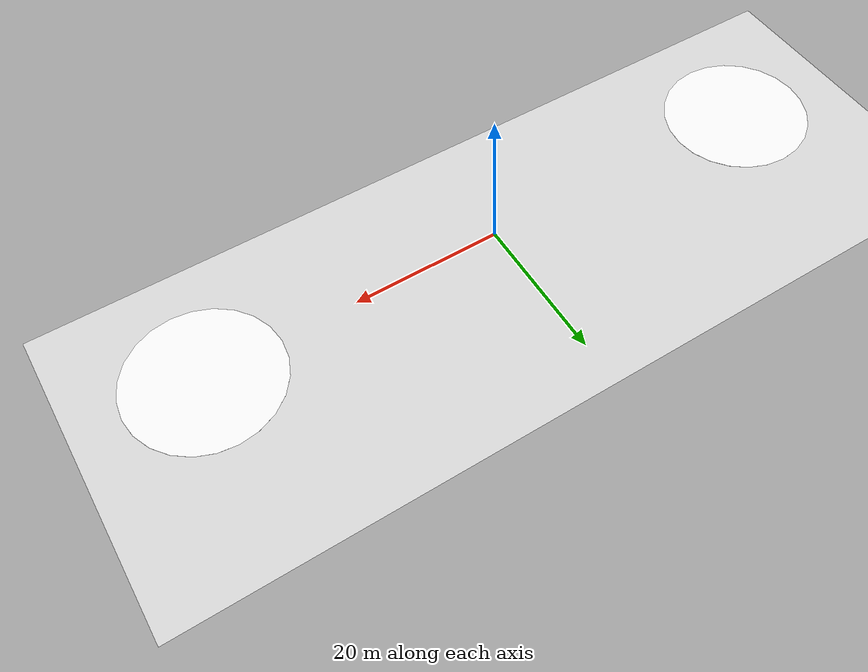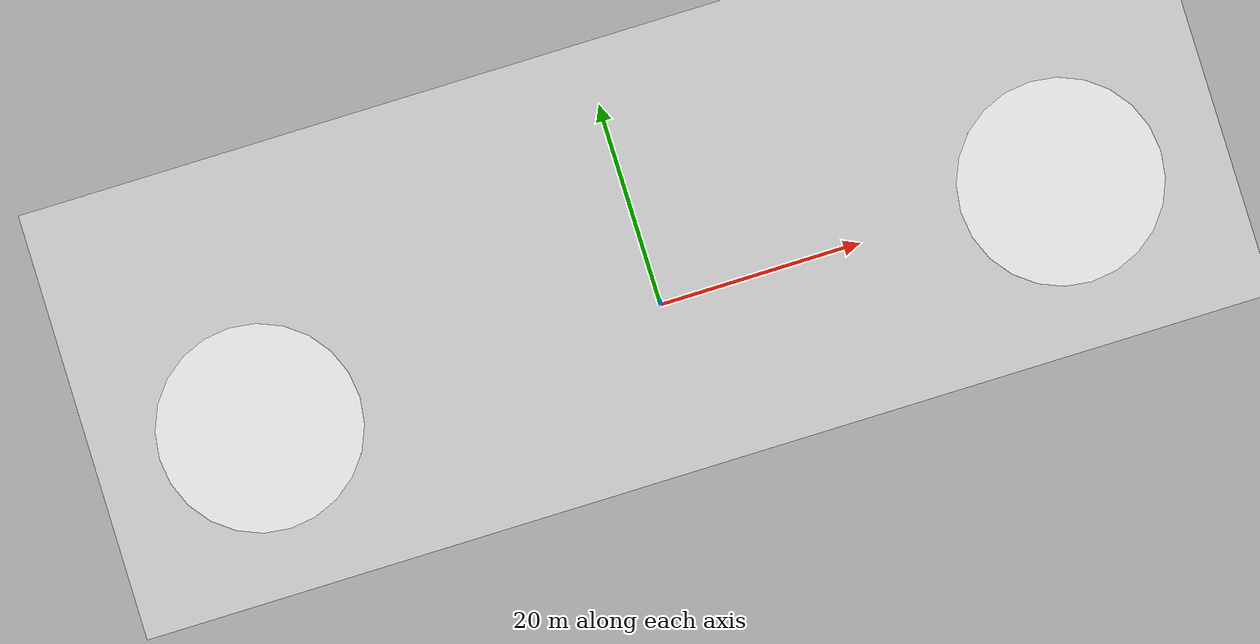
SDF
<?xml version="1.0" ?>
<sdf version="1.4">
  <world name="default">
    <include>
      <uri>model://ground_plane</uri>
    </include>

    <include>
      <uri>model://sun</uri>
    </include>

<model name='BuildingDefaultName'>
    <link name='Goal1'>
      <collision name='Goal1'>
        <pose>40.0 0.0 0 0 -0 0</pose>
        <geometry>
          <cylinder>
            <radius>0.0</radius>
            <length>0.1</length>
          </cylinder>
        </geometry>
      </collision>
      <visual name='Goal1'>
        <pose>40.0 0.0 0.0 0 -0 0</pose>
        <geometry>
          <cylinder>
            <radius>10.0</radius>
            <length>0.01</length>
          </cylinder>
        </geometry>
          <material>
          <script>
            <uri>file://media/materials/scripts/gazebo.material</uri>
            <name>Gazebo/White</name>
          </script>
        </material>
      </visual>
      <velocity_decay>
        <linear>0</linear>
        <angular>0</angular>
      </velocity_decay>
    </link>
    <link name='Goal2'>
      <collision name='Goal2'>
        <pose>-40.0 0.0 0 0 -0 0</pose>
        <geometry>
          <cylinder>
            <radius>0.0</radius>
            <length>0.1</length>
          </cylinder>
        </geometry>
      </collision>
      <visual name='Goal2'>
        <pose>-40.0 0.0 0.0 0 -0 0</pose>
        <geometry>
          <cylinder>
            <radius>10.0</radius>
            <length>0.01</length>
          </cylinder>
        </geometry>
          <material>
          <script>
            <uri>file://media/materials/scripts/gazebo.material</uri>
            <name>Gazebo/White</name>
          </script>
        </material>
      </visual>
      <velocity_decay>
        <linear>0</linear>
        <angular>0</angular>
      </velocity_decay>
    </link>
    <static>1</static>
</model>
</world>
</sdf>
